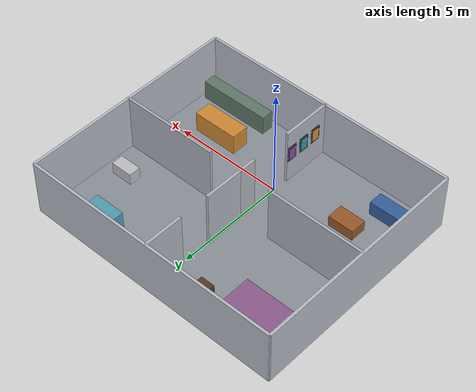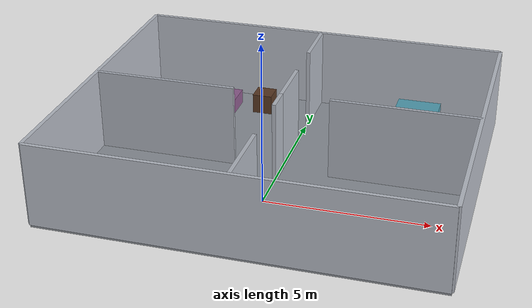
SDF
<sdf version="1.9">
 <world name="tangying_home">
  <model name="floor">
   <static>true</static>
   <link name="link">
    <collision name="collision"><geometry><box><size>12 10 0.1</size></box></geometry></collision>
    <visual name="visual">
     <geometry><box><size>12 10 0.1</size></box></geometry>
     <material><ambient>0.55 0.57 0.60 1</ambient><diffuse>0.55 0.57 0.60 1</diffuse></material>
    </visual>
   </link>
   <pose>0 2 -0.05 0 0 0</pose>
  </model>
  <model name="outer_wall_west">
   <static>true</static>
   <link name="link">
    <collision name="c"><geometry><box><size>0.12 10 2.6</size></box></geometry></collision>
    <visual name="v">
     <geometry><box><size>0.12 10 2.6</size></box></geometry>
     <material><ambient>0.72 0.74 0.78 1</ambient><diffuse>0.72 0.74 0.78 1</diffuse></material>
    </visual>
   </link>
   <pose>-6 2 1.3 0 0 0</pose>
  </model>
  <model name="outer_wall_east">
   <static>true</static>
   <link name="link">
    <collision name="c"><geometry><box><size>0.12 10 2.6</size></box></geometry></collision>
    <visual name="v">
     <geometry><box><size>0.12 10 2.6</size></box></geometry>
     <material><ambient>0.72 0.74 0.78 1</ambient><diffuse>0.72 0.74 0.78 1</diffuse></material>
    </visual>
   </link>
   <pose>6 2 1.3 0 0 0</pose>
  </model>
  <model name="outer_wall_south">
   <static>true</static>
   <link name="link">
    <collision name="c"><geometry><box><size>12 0.12 2.6</size></box></geometry></collision>
    <visual name="v">
     <geometry><box><size>12 0.12 2.6</size></box></geometry>
     <material><ambient>0.72 0.74 0.78 1</ambient><diffuse>0.72 0.74 0.78 1</diffuse></material>
    </visual>
   </link>
   <pose>0 -3 1.3 0 0 0</pose>
  </model>
  <model name="outer_wall_north">
   <static>true</static>
   <link name="link">
    <collision name="c"><geometry><box><size>12 0.12 2.6</size></box></geometry></collision>
    <visual name="v">
     <geometry><box><size>12 0.12 2.6</size></box></geometry>
     <material><ambient>0.72 0.74 0.78 1</ambient><diffuse>0.72 0.74 0.78 1</diffuse></material>
    </visual>
   </link>
   <pose>0 7 1.3 0 0 0</pose>
  </model>
  <model name="partition_lower_west">
   <static>true</static>
   <link name="link">
    <collision name="c"><geometry><box><size>0.12 2.3 2.6</size></box></geometry></collision>
    <visual name="v">
     <geometry><box><size>0.12 2.3 2.6</size></box></geometry>
     <material><ambient>0.70 0.72 0.76 1</ambient><diffuse>0.70 0.72 0.76 1</diffuse></material>
    </visual>
   </link>
   <pose>0 -1.85 1.3 0 0 0</pose>
  </model>
  <model name="partition_lower_east">
   <static>true</static>
   <link name="link">
    <collision name="c"><geometry><box><size>0.12 0.8 2.6</size></box></geometry></collision>
    <visual name="v">
     <geometry><box><size>0.12 0.8 2.6</size></box></geometry>
     <material><ambient>0.70 0.72 0.76 1</ambient><diffuse>0.70 0.72 0.76 1</diffuse></material>
    </visual>
   </link>
   <pose>0 1.6 1.3 0 0 0</pose>
  </model>
  <model name="partition_upper_west">
   <static>true</static>
   <link name="link">
    <collision name="c"><geometry><box><size>0.12 1.8 2.6</size></box></geometry></collision>
    <visual name="v">
     <geometry><box><size>0.12 1.8 2.6</size></box></geometry>
     <material><ambient>0.70 0.72 0.76 1</ambient><diffuse>0.70 0.72 0.76 1</diffuse></material>
    </visual>
   </link>
   <pose>0 2.9 1.3 0 0 0</pose>
  </model>
  <model name="partition_upper_east">
   <static>true</static>
   <link name="link">
    <collision name="c"><geometry><box><size>0.12 1.8 2.6</size></box></geometry></collision>
    <visual name="v">
     <geometry><box><size>0.12 1.8 2.6</size></box></geometry>
     <material><ambient>0.70 0.72 0.76 1</ambient><diffuse>0.70 0.72 0.76 1</diffuse></material>
    </visual>
   </link>
   <pose>0 6.1 1.3 0 0 0</pose>
  </model>
  <model name="partition_mid_west">
   <static>true</static>
   <link name="link">
    <collision name="c"><geometry><box><size>4.5 0.12 2.6</size></box></geometry></collision>
    <visual name="v">
     <geometry><box><size>4.5 0.12 2.6</size></box></geometry>
     <material><ambient>0.68 0.70 0.74 1</ambient><diffuse>0.68 0.70 0.74 1</diffuse></material>
    </visual>
   </link>
   <pose>-3.75 2 1.3 0 0 0</pose>
  </model>
  <model name="partition_mid_east">
   <static>true</static>
   <link name="link">
    <collision name="c"><geometry><box><size>4.5 0.12 2.6</size></box></geometry></collision>
    <visual name="v">
     <geometry><box><size>4.5 0.12 2.6</size></box></geometry>
     <material><ambient>0.68 0.70 0.74 1</ambient><diffuse>0.68 0.70 0.74 1</diffuse></material>
    </visual>
   </link>
   <pose>3.75 2 1.3 0 0 0</pose>
  </model>
  <model name="living_wall_panel_1">
   <static>true</static>
   <link name="link">
    <visual name="frame">
     <geometry><box><size>0.035 0.48 0.72</size></box></geometry>
     <material><ambient>0.08 0.10 0.14 1</ambient><diffuse>0.08 0.10 0.14 1</diffuse></material>
    </visual>
    <visual name="inset">
     <pose>-0.02 0 0 0 0 0</pose>
     <geometry><box><size>0.02 0.34 0.56</size></box></geometry>
     <material><ambient>0.86 0.56 0.18 1</ambient><diffuse>0.86 0.56 0.18 1</diffuse></material>
    </visual>
   </link>
   <pose>-0.08 -2.35 1.45 0 0 0</pose>
  </model>
  <model name="living_wall_panel_2">
   <static>true</static>
   <link name="link">
    <visual name="frame">
     <geometry><box><size>0.035 0.48 0.72</size></box></geometry>
     <material><ambient>0.08 0.10 0.14 1</ambient><diffuse>0.08 0.10 0.14 1</diffuse></material>
    </visual>
    <visual name="inset">
     <pose>-0.02 0 0 0 0 0</pose>
     <geometry><box><size>0.02 0.34 0.56</size></box></geometry>
     <material><ambient>0.18 0.62 0.70 1</ambient><diffuse>0.18 0.62 0.70 1</diffuse></material>
    </visual>
   </link>
   <pose>-0.08 -1.65 1.45 0 0 0</pose>
  </model>
  <model name="living_wall_panel_3">
   <static>true</static>
   <link name="link">
    <visual name="frame">
     <geometry><box><size>0.035 0.48 0.72</size></box></geometry>
     <material><ambient>0.08 0.10 0.14 1</ambient><diffuse>0.08 0.10 0.14 1</diffuse></material>
    </visual>
    <visual name="inset">
     <pose>-0.02 0 0 0 0 0</pose>
     <geometry><box><size>0.02 0.34 0.56</size></box></geometry>
     <material><ambient>0.56 0.30 0.62 1</ambient><diffuse>0.56 0.30 0.62 1</diffuse></material>
    </visual>
   </link>
   <pose>-0.08 -0.95 1.45 0 0 0</pose>
  </model>
  <model name="living_sofa">
   <static>true</static>
   <link name="link">
    <collision name="c"><geometry><box><size>2.0 0.65 0.65</size></box></geometry></collision>
    <visual name="v">
     <geometry><box><size>2.0 0.65 0.65</size></box></geometry>
     <material><ambient>0.20 0.38 0.62 1</ambient><diffuse>0.20 0.38 0.62 1</diffuse></material>
    </visual>
   </link>
   <pose>-4.6 -1.9 0.325 0 0 0</pose>
  </model>
  <model name="living_table">
   <static>true</static>
   <link name="link">
    <collision name="c"><geometry><box><size>1.2 0.75 0.5</size></box></geometry></collision>
    <visual name="v">
     <geometry><box><size>1.2 0.75 0.5</size></box></geometry>
     <material><ambient>0.60 0.35 0.16 1</ambient><diffuse>0.60 0.35 0.16 1</diffuse></material>
    </visual>
   </link>
   <pose>-3.4 -0.4 0.25 0 0 0</pose>
  </model>
  <model name="kitchen_island">
   <static>true</static>
   <link name="link">
    <collision name="c"><geometry><box><size>2.1 0.8 0.95</size></box></geometry></collision>
    <visual name="v">
     <geometry><box><size>2.1 0.8 0.95</size></box></geometry>
     <material><ambient>0.82 0.54 0.20 1</ambient><diffuse>0.82 0.54 0.20 1</diffuse></material>
    </visual>
   </link>
   <pose>3.6 -0.8 0.475 0 0 0</pose>
  </model>
  <model name="kitchen_counter">
   <static>true</static>
   <link name="link">
    <collision name="c"><geometry><box><size>3.3 0.55 0.9</size></box></geometry></collision>
    <visual name="v">
     <geometry><box><size>3.3 0.55 0.9</size></box></geometry>
     <material><ambient>0.38 0.48 0.42 1</ambient><diffuse>0.38 0.48 0.42 1</diffuse></material>
    </visual>
   </link>
   <pose>4.1 -2.35 0.45 0 0 0</pose>
  </model>
  <model name="bed">
   <static>true</static>
   <link name="link">
    <collision name="c"><geometry><box><size>2.8 1.8 0.48</size></box></geometry></collision>
    <visual name="v">
     <geometry><box><size>2.8 1.8 0.48</size></box></geometry>
     <material><ambient>0.56 0.36 0.56 1</ambient><diffuse>0.56 0.36 0.56 1</diffuse></material>
    </visual>
   </link>
   <pose>-4.0 5.3 0.24 0 0 0</pose>
  </model>
  <model name="bedside_table">
   <static>true</static>
   <link name="link">
    <collision name="c"><geometry><box><size>0.65 0.65 0.65</size></box></geometry></collision>
    <visual name="v">
     <geometry><box><size>0.65 0.65 0.65</size></box></geometry>
     <material><ambient>0.35 0.22 0.14 1</ambient><diffuse>0.35 0.22 0.14 1</diffuse></material>
    </visual>
   </link>
   <pose>-1.7 5.9 0.325 0 0 0</pose>
  </model>
  <model name="bathroom_sink">
   <static>true</static>
   <link name="link">
    <collision name="c"><geometry><box><size>1.4 0.65 0.9</size></box></geometry></collision>
    <visual name="v">
     <geometry><box><size>1.4 0.65 0.9</size></box></geometry>
     <material><ambient>0.32 0.62 0.70 1</ambient><diffuse>0.32 0.62 0.70 1</diffuse></material>
    </visual>
   </link>
   <pose>3.6 5.8 0.45 0 0 0</pose>
  </model>
  <model name="bathroom_bench">
   <static>true</static>
   <link name="link">
    <collision name="c"><geometry><box><size>1.0 0.55 0.55</size></box></geometry></collision>
    <visual name="v">
     <geometry><box><size>1.0 0.55 0.55</size></box></geometry>
     <material><ambient>0.75 0.75 0.78 1</ambient><diffuse>0.75 0.75 0.78 1</diffuse></material>
    </visual>
   </link>
   <pose>4.9 3.4 0.275 0 0 0</pose>
  </model>
 </world>
</sdf>
